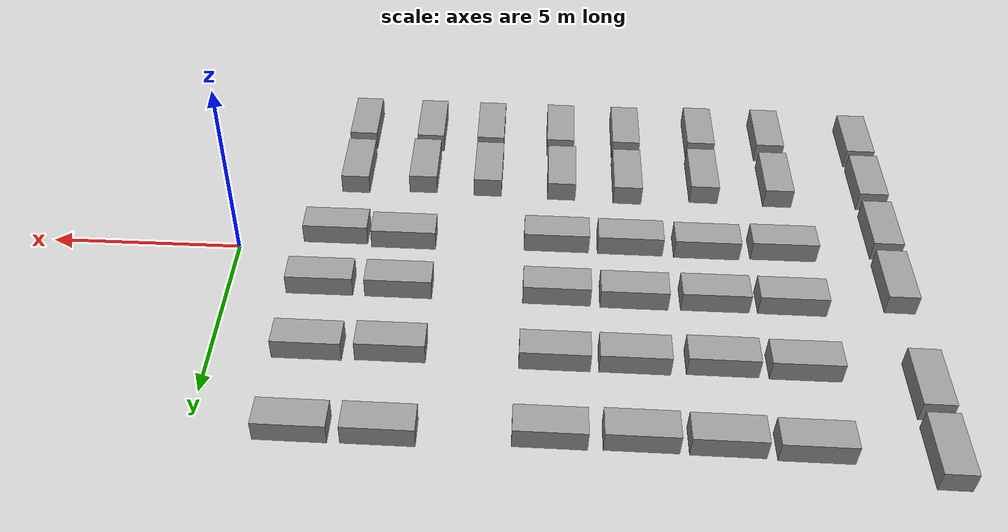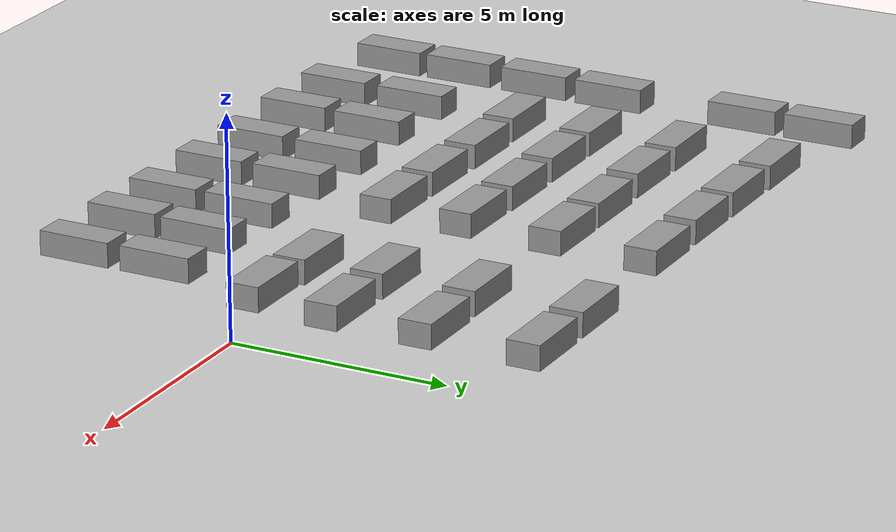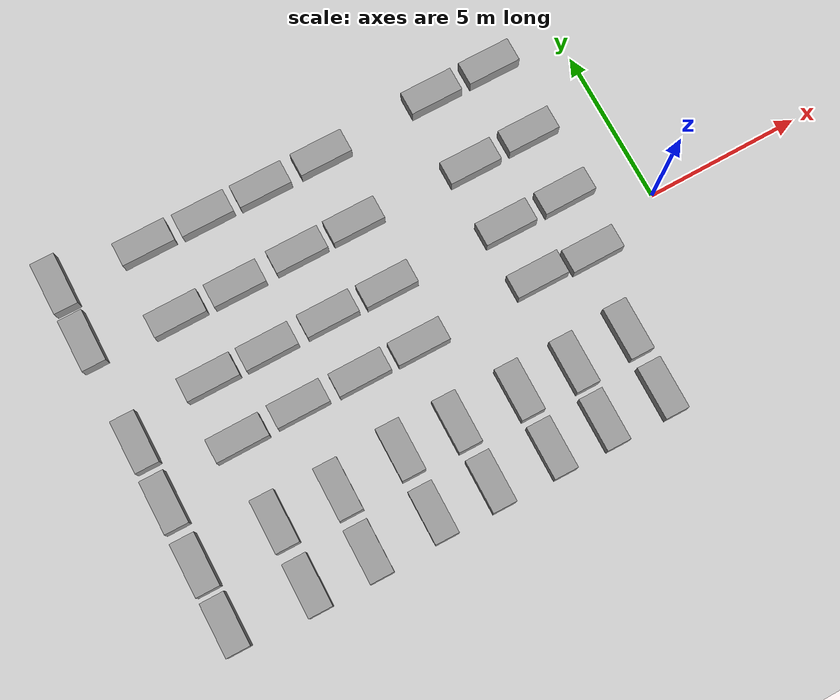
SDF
<sdf version="1.7">
 <world name="default">
  <model name="ground_plane">
   <static>1</static>
   <link name="link">
    <collision name="collision">
     <geometry><plane><normal>0 0 1</normal><size>100 100</size></plane></geometry>
     <surface><friction><ode><mu>100</mu><mu2>50</mu2></ode></friction></surface>
    </collision>
    <visual name="visual">
     <cast_shadows>0</cast_shadows>
     <geometry><plane><normal>0 0 1</normal><size>100 100</size></plane></geometry>
     <material>
      <script><uri>file://media/materials/scripts/gazebo.material</uri><name>Gazebo/Grey</name></script>
     </material>
    </visual>
   </link>
  </model>
  <model name="unit_box_clone_16">
   <pose>-2.8254 -3.28859 0.285053 0 0 -0.009404</pose>
   <link name="link">
    <inertial>
     <mass>1</mass>
     <inertia>
      <ixx>0.166667</ixx>
      <ixy>0</ixy>
      <ixz>0</ixz>
      <iyy>0.166667</iyy>
      <iyz>0</iyz>
      <izz>0.166667</izz>
     </inertia>
    </inertial>
    <collision name="collision"><geometry><box><size>0.769556 1.70794 0.570107</size></box></geometry></collision>
    <visual name="visual">
     <geometry><box><size>0.769556 1.70794 0.570107</size></box></geometry>
     <material>
      <script><name>Gazebo/Grey</name><uri>file://media/materials/scripts/gazebo.material</uri></script>
     </material>
    </visual>
   </link>
  </model>
  <model name="unit_box_clone_17">
   <pose>-2.82801 -5.28936 0.285053 0 0 -0.009404</pose>
   <link name="link">
    <inertial>
     <mass>1</mass>
     <inertia>
      <ixx>0.166667</ixx>
      <ixy>0</ixy>
      <ixz>0</ixz>
      <iyy>0.166667</iyy>
      <iyz>0</iyz>
      <izz>0.166667</izz>
     </inertia>
    </inertial>
    <collision name="collision"><geometry><box><size>0.769556 1.70794 0.570107</size></box></geometry></collision>
    <visual name="visual">
     <geometry><box><size>0.769556 1.70794 0.570107</size></box></geometry>
     <material>
      <script><name>Gazebo/Grey</name><uri>file://media/materials/scripts/gazebo.material</uri></script>
     </material>
    </visual>
   </link>
  </model>
  <model name="unit_box_clone_18">
   <pose>-4.70644 -3.38739 0.285053 0 0 -0.009404</pose>
   <link name="link">
    <inertial>
     <mass>1</mass>
     <inertia>
      <ixx>0.166667</ixx>
      <ixy>0</ixy>
      <ixz>0</ixz>
      <iyy>0.166667</iyy>
      <iyz>0</iyz>
      <izz>0.166667</izz>
     </inertia>
    </inertial>
    <collision name="collision"><geometry><box><size>0.769556 1.70794 0.570107</size></box></geometry></collision>
    <visual name="visual">
     <geometry><box><size>0.769556 1.70794 0.570107</size></box></geometry>
     <material>
      <script><name>Gazebo/Grey</name><uri>file://media/materials/scripts/gazebo.material</uri></script>
     </material>
    </visual>
   </link>
  </model>
  <model name="unit_box_clone_19">
   <pose>-4.77801 -5.27894 0.285053 0 0 -0.009404</pose>
   <link name="link">
    <inertial>
     <mass>1</mass>
     <inertia>
      <ixx>0.166667</ixx>
      <ixy>0</ixy>
      <ixz>0</ixz>
      <iyy>0.166667</iyy>
      <iyz>0</iyz>
      <izz>0.166667</izz>
     </inertia>
    </inertial>
    <collision name="collision"><geometry><box><size>0.769556 1.70794 0.570107</size></box></geometry></collision>
    <visual name="visual">
     <geometry><box><size>0.769556 1.70794 0.570107</size></box></geometry>
     <material>
      <script><name>Gazebo/Grey</name><uri>file://media/materials/scripts/gazebo.material</uri></script>
     </material>
    </visual>
   </link>
  </model>
  <model name="unit_box_clone_20">
   <pose>-6.5092 -3.33435 0.285053 0 0 -0.009404</pose>
   <link name="link">
    <inertial>
     <mass>1</mass>
     <inertia>
      <ixx>0.166667</ixx>
      <ixy>0</ixy>
      <ixz>0</ixz>
      <iyy>0.166667</iyy>
      <iyz>0</iyz>
      <izz>0.166667</izz>
     </inertia>
    </inertial>
    <collision name="collision"><geometry><box><size>0.769556 1.70794 0.570107</size></box></geometry></collision>
    <visual name="visual">
     <geometry><box><size>0.769556 1.70794 0.570107</size></box></geometry>
     <material>
      <script><name>Gazebo/Grey</name><uri>file://media/materials/scripts/gazebo.material</uri></script>
     </material>
    </visual>
   </link>
  </model>
  <model name="unit_box_clone_21">
   <pose>-6.51492 -5.26505 0.285053 0 0 -0.009404</pose>
   <link name="link">
    <inertial>
     <mass>1</mass>
     <inertia>
      <ixx>0.166667</ixx>
      <ixy>0</ixy>
      <ixz>0</ixz>
      <iyy>0.166667</iyy>
      <iyz>0</iyz>
      <izz>0.166667</izz>
     </inertia>
    </inertial>
    <collision name="collision"><geometry><box><size>0.769556 1.70794 0.570107</size></box></geometry></collision>
    <visual name="visual">
     <geometry><box><size>0.769556 1.70794 0.570107</size></box></geometry>
     <material>
      <script><name>Gazebo/Grey</name><uri>file://media/materials/scripts/gazebo.material</uri></script>
     </material>
    </visual>
   </link>
  </model>
  <model name="unit_box_clone_22">
   <pose>-8.55716 -3.28096 0.285053 0 0 -0.009404</pose>
   <link name="link">
    <inertial>
     <mass>1</mass>
     <inertia>
      <ixx>0.166667</ixx>
      <ixy>0</ixy>
      <ixz>0</ixz>
      <iyy>0.166667</iyy>
      <iyz>0</iyz>
      <izz>0.166667</izz>
     </inertia>
    </inertial>
    <collision name="collision"><geometry><box><size>0.769556 1.70794 0.570107</size></box></geometry></collision>
    <visual name="visual">
     <geometry><box><size>0.769556 1.70794 0.570107</size></box></geometry>
     <material>
      <script><name>Gazebo/Grey</name><uri>file://media/materials/scripts/gazebo.material</uri></script>
     </material>
    </visual>
   </link>
  </model>
  <model name="unit_box_clone_23">
   <pose>-8.53285 -5.2635 0.285053 0 0 -0.009404</pose>
   <link name="link">
    <inertial>
     <mass>1</mass>
     <inertia>
      <ixx>0.166667</ixx>
      <ixy>0</ixy>
      <ixz>0</ixz>
      <iyy>0.166667</iyy>
      <iyz>0</iyz>
      <izz>0.166667</izz>
     </inertia>
    </inertial>
    <collision name="collision"><geometry><box><size>0.769556 1.70794 0.570107</size></box></geometry></collision>
    <visual name="visual">
     <geometry><box><size>0.769556 1.70794 0.570107</size></box></geometry>
     <material>
      <script><name>Gazebo/Grey</name><uri>file://media/materials/scripts/gazebo.material</uri></script>
     </material>
    </visual>
   </link>
  </model>
  <model name="unit_box_clone_24">
   <pose>-10.3798 -3.21532 0.285053 0 0 -0.009404</pose>
   <link name="link">
    <inertial>
     <mass>1</mass>
     <inertia>
      <ixx>0.166667</ixx>
      <ixy>0</ixy>
      <ixz>0</ixz>
      <iyy>0.166667</iyy>
      <iyz>0</iyz>
      <izz>0.166667</izz>
     </inertia>
    </inertial>
    <collision name="collision"><geometry><box><size>0.769556 1.70794 0.570107</size></box></geometry></collision>
    <visual name="visual">
     <geometry><box><size>0.769556 1.70794 0.570107</size></box></geometry>
     <material>
      <script><name>Gazebo/Grey</name><uri>file://media/materials/scripts/gazebo.material</uri></script>
     </material>
    </visual>
   </link>
  </model>
  <model name="unit_box_clone_25">
   <pose>-10.4091 -5.25344 0.285053 0 0 -0.009404</pose>
   <link name="link">
    <inertial>
     <mass>1</mass>
     <inertia>
      <ixx>0.166667</ixx>
      <ixy>0</ixy>
      <ixz>0</ixz>
      <iyy>0.166667</iyy>
      <iyz>0</iyz>
      <izz>0.166667</izz>
     </inertia>
    </inertial>
    <collision name="collision"><geometry><box><size>0.769556 1.70794 0.570107</size></box></geometry></collision>
    <visual name="visual">
     <geometry><box><size>0.769556 1.70794 0.570107</size></box></geometry>
     <material>
      <script><name>Gazebo/Grey</name><uri>file://media/materials/scripts/gazebo.material</uri></script>
     </material>
    </visual>
   </link>
  </model>
  <model name="unit_box_clone_26">
   <pose>-12.4925 -3.36248 0.285053 0 0 -0.009404</pose>
   <link name="link">
    <inertial>
     <mass>1</mass>
     <inertia>
      <ixx>0.166667</ixx>
      <ixy>0</ixy>
      <ixz>0</ixz>
      <iyy>0.166667</iyy>
      <iyz>0</iyz>
      <izz>0.166667</izz>
     </inertia>
    </inertial>
    <collision name="collision"><geometry><box><size>0.769556 1.70794 0.570107</size></box></geometry></collision>
    <visual name="visual">
     <geometry><box><size>0.769556 1.70794 0.570107</size></box></geometry>
     <material>
      <script><name>Gazebo/Grey</name><uri>file://media/materials/scripts/gazebo.material</uri></script>
     </material>
    </visual>
   </link>
  </model>
  <model name="unit_box_clone_27">
   <pose>-12.554 -5.33887 0.285053 0 0 -0.009404</pose>
   <link name="link">
    <inertial>
     <mass>1</mass>
     <inertia>
      <ixx>0.166667</ixx>
      <ixy>0</ixy>
      <ixz>0</ixz>
      <iyy>0.166667</iyy>
      <iyz>0</iyz>
      <izz>0.166667</izz>
     </inertia>
    </inertial>
    <collision name="collision"><geometry><box><size>0.769556 1.70794 0.570107</size></box></geometry></collision>
    <visual name="visual">
     <geometry><box><size>0.769556 1.70794 0.570107</size></box></geometry>
     <material>
      <script><name>Gazebo/Grey</name><uri>file://media/materials/scripts/gazebo.material</uri></script>
     </material>
    </visual>
   </link>
  </model>
  <model name="unit_box_clone_28">
   <pose>-14.5124 -3.30787 0.285053 0 0 -0.009404</pose>
   <link name="link">
    <inertial>
     <mass>1</mass>
     <inertia>
      <ixx>0.166667</ixx>
      <ixy>0</ixy>
      <ixz>0</ixz>
      <iyy>0.166667</iyy>
      <iyz>0</iyz>
      <izz>0.166667</izz>
     </inertia>
    </inertial>
    <collision name="collision"><geometry><box><size>0.769556 1.70794 0.570107</size></box></geometry></collision>
    <visual name="visual">
     <geometry><box><size>0.769556 1.70794 0.570107</size></box></geometry>
     <material>
      <script><name>Gazebo/Grey</name><uri>file://media/materials/scripts/gazebo.material</uri></script>
     </material>
    </visual>
   </link>
  </model>
  <model name="unit_box_clone_29">
   <pose>-14.5214 -5.34607 0.285053 0 0 -0.009404</pose>
   <link name="link">
    <inertial>
     <mass>1</mass>
     <inertia>
      <ixx>0.166667</ixx>
      <ixy>0</ixy>
      <ixz>0</ixz>
      <iyy>0.166667</iyy>
      <iyz>0</iyz>
      <izz>0.166667</izz>
     </inertia>
    </inertial>
    <collision name="collision"><geometry><box><size>0.769556 1.70794 0.570107</size></box></geometry></collision>
    <visual name="visual">
     <geometry><box><size>0.769556 1.70794 0.570107</size></box></geometry>
     <material>
      <script><name>Gazebo/Grey</name><uri>file://media/materials/scripts/gazebo.material</uri></script>
     </material>
    </visual>
   </link>
  </model>
  <model name="unit_box_clone_30">
   <pose>-4.35346 -0.588108 0.285053 0 -0 1.56704</pose>
   <link name="link">
    <inertial>
     <mass>1</mass>
     <inertia>
      <ixx>0.166667</ixx>
      <ixy>0</ixy>
      <ixz>0</ixz>
      <iyy>0.166667</iyy>
      <iyz>0</iyz>
      <izz>0.166667</izz>
     </inertia>
    </inertial>
    <collision name="collision"><geometry><box><size>0.769556 1.70794 0.570107</size></box></geometry></collision>
    <visual name="visual">
     <geometry><box><size>0.769556 1.70794 0.570107</size></box></geometry>
     <material>
      <script><name>Gazebo/Grey</name><uri>file://media/materials/scripts/gazebo.material</uri></script>
     </material>
    </visual>
   </link>
  </model>
  <model name="unit_box_clone_30_clone">
   <pose>-2.53042 -0.690377 0.285055 -0 5e-06 1.57079</pose>
   <link name="link">
    <inertial>
     <mass>1</mass>
     <inertia>
      <ixx>0.166667</ixx>
      <ixy>0</ixy>
      <ixz>0</ixz>
      <iyy>0.166667</iyy>
      <iyz>0</iyz>
      <izz>0.166667</izz>
     </inertia>
    </inertial>
    <collision name="collision"><geometry><box><size>0.769556 1.70794 0.570107</size></box></geometry></collision>
    <visual name="visual">
     <geometry><box><size>0.769556 1.70794 0.570107</size></box></geometry>
     <material>
      <script><name>Gazebo/Grey</name><uri>file://media/materials/scripts/gazebo.material</uri></script>
     </material>
    </visual>
   </link>
  </model>
  <model name="unit_box_clone_30_clone_0">
   <pose>-4.38892 1.26145 0.285053 0 -0 1.56704</pose>
   <link name="link">
    <inertial>
     <mass>1</mass>
     <inertia>
      <ixx>0.166667</ixx>
      <ixy>0</ixy>
      <ixz>0</ixz>
      <iyy>0.166667</iyy>
      <iyz>0</iyz>
      <izz>0.166667</izz>
     </inertia>
    </inertial>
    <collision name="collision"><geometry><box><size>0.769556 1.70794 0.570107</size></box></geometry></collision>
    <visual name="visual">
     <geometry><box><size>0.769556 1.70794 0.570107</size></box></geometry>
     <material>
      <script><name>Gazebo/Grey</name><uri>file://media/materials/scripts/gazebo.material</uri></script>
     </material>
    </visual>
   </link>
  </model>
  <model name="unit_box_clone_30_clone_1">
   <pose>-2.37186 1.25944 0.285053 0 -0 1.57433</pose>
   <link name="link">
    <inertial>
     <mass>1</mass>
     <inertia>
      <ixx>0.166667</ixx>
      <ixy>0</ixy>
      <ixz>0</ixz>
      <iyy>0.166667</iyy>
      <iyz>0</iyz>
      <izz>0.166667</izz>
     </inertia>
    </inertial>
    <collision name="collision"><geometry><box><size>0.769556 1.70794 0.570107</size></box></geometry></collision>
    <visual name="visual">
     <geometry><box><size>0.769556 1.70794 0.570107</size></box></geometry>
     <material>
      <script><name>Gazebo/Grey</name><uri>file://media/materials/scripts/gazebo.material</uri></script>
     </material>
    </visual>
   </link>
  </model>
  <model name="unit_box_clone_30_clone_2">
   <pose>-4.39769 3.4318 0.285053 0 -0 1.56704</pose>
   <link name="link">
    <inertial>
     <mass>1</mass>
     <inertia>
      <ixx>0.166667</ixx>
      <ixy>0</ixy>
      <ixz>0</ixz>
      <iyy>0.166667</iyy>
      <iyz>0</iyz>
      <izz>0.166667</izz>
     </inertia>
    </inertial>
    <collision name="collision"><geometry><box><size>0.769556 1.70794 0.570107</size></box></geometry></collision>
    <visual name="visual">
     <geometry><box><size>0.769556 1.70794 0.570107</size></box></geometry>
     <material>
      <script><name>Gazebo/Grey</name><uri>file://media/materials/scripts/gazebo.material</uri></script>
     </material>
    </visual>
   </link>
  </model>
  <model name="unit_box_clone_30_clone_3">
   <pose>-2.37886 3.46659 0.285053 0 -0 1.56704</pose>
   <link name="link">
    <inertial>
     <mass>1</mass>
     <inertia>
      <ixx>0.166667</ixx>
      <ixy>0</ixy>
      <ixz>0</ixz>
      <iyy>0.166667</iyy>
      <iyz>0</iyz>
      <izz>0.166667</izz>
     </inertia>
    </inertial>
    <collision name="collision"><geometry><box><size>0.769556 1.70794 0.570107</size></box></geometry></collision>
    <visual name="visual">
     <geometry><box><size>0.769556 1.70794 0.570107</size></box></geometry>
     <material>
      <script><name>Gazebo/Grey</name><uri>file://media/materials/scripts/gazebo.material</uri></script>
     </material>
    </visual>
   </link>
  </model>
  <model name="unit_box_clone_30_clone_4">
   <pose>-4.37377 5.94155 0.285053 0 -0 1.56704</pose>
   <link name="link">
    <inertial>
     <mass>1</mass>
     <inertia>
      <ixx>0.166667</ixx>
      <ixy>0</ixy>
      <ixz>0</ixz>
      <iyy>0.166667</iyy>
      <iyz>0</iyz>
      <izz>0.166667</izz>
     </inertia>
    </inertial>
    <collision name="collision"><geometry><box><size>0.769556 1.70794 0.570107</size></box></geometry></collision>
    <visual name="visual">
     <geometry><box><size>0.769556 1.70794 0.570107</size></box></geometry>
     <material>
      <script><name>Gazebo/Grey</name><uri>file://media/materials/scripts/gazebo.material</uri></script>
     </material>
    </visual>
   </link>
  </model>
  <model name="unit_box_clone_30_clone_5">
   <pose>-2.37421 5.94728 0.285053 0 -0 1.56704</pose>
   <link name="link">
    <inertial>
     <mass>1</mass>
     <inertia>
      <ixx>0.166667</ixx>
      <ixy>0</ixy>
      <ixz>0</ixz>
      <iyy>0.166667</iyy>
      <iyz>0</iyz>
      <izz>0.166667</izz>
     </inertia>
    </inertial>
    <collision name="collision"><geometry><box><size>0.769556 1.70794 0.570107</size></box></geometry></collision>
    <visual name="visual">
     <geometry><box><size>0.769556 1.70794 0.570107</size></box></geometry>
     <material>
      <script><name>Gazebo/Grey</name><uri>file://media/materials/scripts/gazebo.material</uri></script>
     </material>
    </visual>
   </link>
  </model>
  <model name="unit_box_clone_30_clone_6">
   <pose>-8.22975 5.82066 0.285053 0 -0 1.56704</pose>
   <link name="link">
    <inertial>
     <mass>1</mass>
     <inertia>
      <ixx>0.166667</ixx>
      <ixy>0</ixy>
      <ixz>0</ixz>
      <iyy>0.166667</iyy>
      <iyz>0</iyz>
      <izz>0.166667</izz>
     </inertia>
    </inertial>
    <collision name="collision"><geometry><box><size>0.769556 1.70794 0.570107</size></box></geometry></collision>
    <visual name="visual">
     <geometry><box><size>0.769556 1.70794 0.570107</size></box></geometry>
     <material>
      <script><name>Gazebo/Grey</name><uri>file://media/materials/scripts/gazebo.material</uri></script>
     </material>
    </visual>
   </link>
  </model>
  <model name="unit_box_clone_30_clone_7">
   <pose>-10.2842 5.80679 0.285053 0 -0 1.56704</pose>
   <link name="link">
    <inertial>
     <mass>1</mass>
     <inertia>
      <ixx>0.166667</ixx>
      <ixy>0</ixy>
      <ixz>0</ixz>
      <iyy>0.166667</iyy>
      <iyz>0</iyz>
      <izz>0.166667</izz>
     </inertia>
    </inertial>
    <collision name="collision"><geometry><box><size>0.769556 1.70794 0.570107</size></box></geometry></collision>
    <visual name="visual">
     <geometry><box><size>0.769556 1.70794 0.570107</size></box></geometry>
     <material>
      <script><name>Gazebo/Grey</name><uri>file://media/materials/scripts/gazebo.material</uri></script>
     </material>
    </visual>
   </link>
  </model>
  <model name="unit_box_clone_30_clone_8">
   <pose>-14.1499 5.87711 0.285053 0 -0 1.56704</pose>
   <link name="link">
    <inertial>
     <mass>1</mass>
     <inertia>
      <ixx>0.166667</ixx>
      <ixy>0</ixy>
      <ixz>0</ixz>
      <iyy>0.166667</iyy>
      <iyz>0</iyz>
      <izz>0.166667</izz>
     </inertia>
    </inertial>
    <collision name="collision"><geometry><box><size>0.769556 1.70794 0.570107</size></box></geometry></collision>
    <visual name="visual">
     <geometry><box><size>0.769556 1.70794 0.570107</size></box></geometry>
     <material>
      <script><name>Gazebo/Grey</name><uri>file://media/materials/scripts/gazebo.material</uri></script>
     </material>
    </visual>
   </link>
  </model>
  <model name="unit_box_clone_30_clone_9">
   <pose>-12.2068 5.82987 0.285053 0 -0 1.56704</pose>
   <link name="link">
    <inertial>
     <mass>1</mass>
     <inertia>
      <ixx>0.166667</ixx>
      <ixy>0</ixy>
      <ixz>0</ixz>
      <iyy>0.166667</iyy>
      <iyz>0</iyz>
      <izz>0.166667</izz>
     </inertia>
    </inertial>
    <collision name="collision"><geometry><box><size>0.769556 1.70794 0.570107</size></box></geometry></collision>
    <visual name="visual">
     <geometry><box><size>0.769556 1.70794 0.570107</size></box></geometry>
     <material>
      <script><name>Gazebo/Grey</name><uri>file://media/materials/scripts/gazebo.material</uri></script>
     </material>
    </visual>
   </link>
  </model>
  <model name="unit_box_clone_30_clone_10">
   <pose>-12.338 3.45716 0.285053 0 -0 1.56453</pose>
   <link name="link">
    <inertial>
     <mass>1</mass>
     <inertia>
      <ixx>0.166667</ixx>
      <ixy>0</ixy>
      <ixz>0</ixz>
      <iyy>0.166667</iyy>
      <iyz>0</iyz>
      <izz>0.166667</izz>
     </inertia>
    </inertial>
    <collision name="collision"><geometry><box><size>0.769556 1.70794 0.570107</size></box></geometry></collision>
    <visual name="visual">
     <geometry><box><size>0.769556 1.70794 0.570107</size></box></geometry>
     <material>
      <script><name>Gazebo/Grey</name><uri>file://media/materials/scripts/gazebo.material</uri></script>
     </material>
    </visual>
   </link>
  </model>
  <model name="unit_box_clone_30_clone_11">
   <pose>-14.2854 3.48316 0.285053 0 -0 1.57079</pose>
   <link name="link">
    <inertial>
     <mass>1</mass>
     <inertia>
      <ixx>0.166667</ixx>
      <ixy>0</ixy>
      <ixz>0</ixz>
      <iyy>0.166667</iyy>
      <iyz>0</iyz>
      <izz>0.166667</izz>
     </inertia>
    </inertial>
    <collision name="collision"><geometry><box><size>0.769556 1.70794 0.570107</size></box></geometry></collision>
    <visual name="visual">
     <geometry><box><size>0.769556 1.70794 0.570107</size></box></geometry>
     <material>
      <script><name>Gazebo/Grey</name><uri>file://media/materials/scripts/gazebo.material</uri></script>
     </material>
    </visual>
   </link>
  </model>
  <model name="unit_box_clone_30_clone_12">
   <pose>-8.34685 3.49428 0.285053 0 -0 1.56704</pose>
   <link name="link">
    <inertial>
     <mass>1</mass>
     <inertia>
      <ixx>0.166667</ixx>
      <ixy>0</ixy>
      <ixz>0</ixz>
      <iyy>0.166667</iyy>
      <iyz>0</iyz>
      <izz>0.166667</izz>
     </inertia>
    </inertial>
    <collision name="collision"><geometry><box><size>0.769556 1.70794 0.570107</size></box></geometry></collision>
    <visual name="visual">
     <geometry><box><size>0.769556 1.70794 0.570107</size></box></geometry>
     <material>
      <script><name>Gazebo/Grey</name><uri>file://media/materials/scripts/gazebo.material</uri></script>
     </material>
    </visual>
   </link>
  </model>
  <model name="unit_box_clone_30_clone_13">
   <pose>-10.2581 3.49089 0.285053 0 -0 1.56704</pose>
   <link name="link">
    <inertial>
     <mass>1</mass>
     <inertia>
      <ixx>0.166667</ixx>
      <ixy>0</ixy>
      <ixz>0</ixz>
      <iyy>0.166667</iyy>
      <iyz>0</iyz>
      <izz>0.166667</izz>
     </inertia>
    </inertial>
    <collision name="collision"><geometry><box><size>0.769556 1.70794 0.570107</size></box></geometry></collision>
    <visual name="visual">
     <geometry><box><size>0.769556 1.70794 0.570107</size></box></geometry>
     <material>
      <script><name>Gazebo/Grey</name><uri>file://media/materials/scripts/gazebo.material</uri></script>
     </material>
    </visual>
   </link>
  </model>
  <model name="unit_box_clone_30_clone_14">
   <pose>-8.40295 1.29549 0.285053 0 -0 1.56704</pose>
   <link name="link">
    <inertial>
     <mass>1</mass>
     <inertia>
      <ixx>0.166667</ixx>
      <ixy>0</ixy>
      <ixz>0</ixz>
      <iyy>0.166667</iyy>
      <iyz>0</iyz>
      <izz>0.166667</izz>
     </inertia>
    </inertial>
    <collision name="collision"><geometry><box><size>0.769556 1.70794 0.570107</size></box></geometry></collision>
    <visual name="visual">
     <geometry><box><size>0.769556 1.70794 0.570107</size></box></geometry>
     <material>
      <script><name>Gazebo/Grey</name><uri>file://media/materials/scripts/gazebo.material</uri></script>
     </material>
    </visual>
   </link>
  </model>
  <model name="unit_box_clone_30_clone_15">
   <pose>-10.3504 1.33232 0.285053 0 -0 1.56704</pose>
   <link name="link">
    <inertial>
     <mass>1</mass>
     <inertia>
      <ixx>0.166667</ixx>
      <ixy>0</ixy>
      <ixz>0</ixz>
      <iyy>0.166667</iyy>
      <iyz>0</iyz>
      <izz>0.166667</izz>
     </inertia>
    </inertial>
    <collision name="collision"><geometry><box><size>0.769556 1.70794 0.570107</size></box></geometry></collision>
    <visual name="visual">
     <geometry><box><size>0.769556 1.70794 0.570107</size></box></geometry>
     <material>
      <script><name>Gazebo/Grey</name><uri>file://media/materials/scripts/gazebo.material</uri></script>
     </material>
    </visual>
   </link>
  </model>
  <model name="unit_box_clone_30_clone_16">
   <pose>-12.3727 1.31728 0.285053 0 -0 1.57078</pose>
   <link name="link">
    <inertial>
     <mass>1</mass>
     <inertia>
      <ixx>0.166667</ixx>
      <ixy>0</ixy>
      <ixz>0</ixz>
      <iyy>0.166667</iyy>
      <iyz>0</iyz>
      <izz>0.166667</izz>
     </inertia>
    </inertial>
    <collision name="collision"><geometry><box><size>0.769556 1.70794 0.570107</size></box></geometry></collision>
    <visual name="visual">
     <geometry><box><size>0.769556 1.70794 0.570107</size></box></geometry>
     <material>
      <script><name>Gazebo/Grey</name><uri>file://media/materials/scripts/gazebo.material</uri></script>
     </material>
    </visual>
   </link>
  </model>
  <model name="unit_box_clone_30_clone_17">
   <pose>-14.2938 1.32589 0.285053 0 -0 1.56704</pose>
   <link name="link">
    <inertial>
     <mass>1</mass>
     <inertia>
      <ixx>0.166667</ixx>
      <ixy>0</ixy>
      <ixz>0</ixz>
      <iyy>0.166667</iyy>
      <iyz>0</iyz>
      <izz>0.166667</izz>
     </inertia>
    </inertial>
    <collision name="collision"><geometry><box><size>0.769556 1.70794 0.570107</size></box></geometry></collision>
    <visual name="visual">
     <geometry><box><size>0.769556 1.70794 0.570107</size></box></geometry>
     <material>
      <script><name>Gazebo/Grey</name><uri>file://media/materials/scripts/gazebo.material</uri></script>
     </material>
    </visual>
   </link>
  </model>
  <model name="unit_box_clone_30_clone_18">
   <pose>-8.40461 -0.678805 0.285053 0 -0 1.56704</pose>
   <link name="link">
    <inertial>
     <mass>1</mass>
     <inertia>
      <ixx>0.166667</ixx>
      <ixy>0</ixy>
      <ixz>0</ixz>
      <iyy>0.166667</iyy>
      <iyz>0</iyz>
      <izz>0.166667</izz>
     </inertia>
    </inertial>
    <collision name="collision"><geometry><box><size>0.769556 1.70794 0.570107</size></box></geometry></collision>
    <visual name="visual">
     <geometry><box><size>0.769556 1.70794 0.570107</size></box></geometry>
     <material>
      <script><name>Gazebo/Grey</name><uri>file://media/materials/scripts/gazebo.material</uri></script>
     </material>
    </visual>
   </link>
  </model>
  <model name="unit_box_clone_30_clone_19">
   <pose>-10.3472 -0.662162 0.285053 0 -0 1.56704</pose>
   <link name="link">
    <inertial>
     <mass>1</mass>
     <inertia>
      <ixx>0.166667</ixx>
      <ixy>0</ixy>
      <ixz>0</ixz>
      <iyy>0.166667</iyy>
      <iyz>0</iyz>
      <izz>0.166667</izz>
     </inertia>
    </inertial>
    <collision name="collision"><geometry><box><size>0.769556 1.70794 0.570107</size></box></geometry></collision>
    <visual name="visual">
     <geometry><box><size>0.769556 1.70794 0.570107</size></box></geometry>
     <material>
      <script><name>Gazebo/Grey</name><uri>file://media/materials/scripts/gazebo.material</uri></script>
     </material>
    </visual>
   </link>
  </model>
  <model name="unit_box_clone_30_clone_20">
   <pose>-12.3506 -0.624524 0.285053 0 -0 1.56704</pose>
   <link name="link">
    <inertial>
     <mass>1</mass>
     <inertia>
      <ixx>0.166667</ixx>
      <ixy>0</ixy>
      <ixz>0</ixz>
      <iyy>0.166667</iyy>
      <iyz>0</iyz>
      <izz>0.166667</izz>
     </inertia>
    </inertial>
    <collision name="collision"><geometry><box><size>0.769556 1.70794 0.570107</size></box></geometry></collision>
    <visual name="visual">
     <geometry><box><size>0.769556 1.70794 0.570107</size></box></geometry>
     <material>
      <script><name>Gazebo/Grey</name><uri>file://media/materials/scripts/gazebo.material</uri></script>
     </material>
    </visual>
   </link>
  </model>
  <model name="unit_box_clone_30_clone_21">
   <pose>-14.354 -0.664939 0.285053 0 -0 1.57078</pose>
   <link name="link">
    <inertial>
     <mass>1</mass>
     <inertia>
      <ixx>0.166667</ixx>
      <ixy>0</ixy>
      <ixz>0</ixz>
      <iyy>0.166667</iyy>
      <iyz>0</iyz>
      <izz>0.166667</izz>
     </inertia>
    </inertial>
    <collision name="collision"><geometry><box><size>0.769556 1.70794 0.570107</size></box></geometry></collision>
    <visual name="visual">
     <geometry><box><size>0.769556 1.70794 0.570107</size></box></geometry>
     <material>
      <script><name>Gazebo/Grey</name><uri>file://media/materials/scripts/gazebo.material</uri></script>
     </material>
    </visual>
   </link>
  </model>
  <model name="unit_box_clone_28_clone">
   <pose>-17.0533 -5.20512 0.285053 0 0 -0.009404</pose>
   <link name="link">
    <inertial>
     <mass>1</mass>
     <inertia>
      <ixx>0.166667</ixx>
      <ixy>0</ixy>
      <ixz>0</ixz>
      <iyy>0.166667</iyy>
      <iyz>0</iyz>
      <izz>0.166667</izz>
     </inertia>
    </inertial>
    <collision name="collision"><geometry><box><size>0.769556 1.70794 0.570107</size></box></geometry></collision>
    <visual name="visual">
     <geometry><box><size>0.769556 1.70794 0.570107</size></box></geometry>
     <material>
      <script><name>Gazebo/Grey</name><uri>file://media/materials/scripts/gazebo.material</uri></script>
     </material>
    </visual>
   </link>
  </model>
  <model name="unit_box_clone_28_clone_0">
   <pose>-17.0521 -3.31667 0.285053 0 0 -0.009404</pose>
   <link name="link">
    <inertial>
     <mass>1</mass>
     <inertia>
      <ixx>0.166667</ixx>
      <ixy>0</ixy>
      <ixz>0</ixz>
      <iyy>0.166667</iyy>
      <iyz>0</iyz>
      <izz>0.166667</izz>
     </inertia>
    </inertial>
    <collision name="collision"><geometry><box><size>0.769556 1.70794 0.570107</size></box></geometry></collision>
    <visual name="visual">
     <geometry><box><size>0.769556 1.70794 0.570107</size></box></geometry>
     <material>
      <script><name>Gazebo/Grey</name><uri>file://media/materials/scripts/gazebo.material</uri></script>
     </material>
    </visual>
   </link>
  </model>
  <model name="unit_box_clone_28_clone_1">
   <pose>-17.0375 -1.31309 0.285053 0 0 -0.009404</pose>
   <link name="link">
    <inertial>
     <mass>1</mass>
     <inertia>
      <ixx>0.166667</ixx>
      <ixy>0</ixy>
      <ixz>0</ixz>
      <iyy>0.166667</iyy>
      <iyz>0</iyz>
      <izz>0.166667</izz>
     </inertia>
    </inertial>
    <collision name="collision"><geometry><box><size>0.769556 1.70794 0.570107</size></box></geometry></collision>
    <visual name="visual">
     <geometry><box><size>0.769556 1.70794 0.570107</size></box></geometry>
     <material>
      <script><name>Gazebo/Grey</name><uri>file://media/materials/scripts/gazebo.material</uri></script>
     </material>
    </visual>
   </link>
  </model>
  <model name="unit_box_clone_28_clone_2">
   <pose>-17.0073 0.647731 0.285053 0 0 -0.009404</pose>
   <link name="link">
    <inertial>
     <mass>1</mass>
     <inertia>
      <ixx>0.166667</ixx>
      <ixy>0</ixy>
      <ixz>0</ixz>
      <iyy>0.166667</iyy>
      <iyz>0</iyz>
      <izz>0.166667</izz>
     </inertia>
    </inertial>
    <collision name="collision"><geometry><box><size>0.769556 1.70794 0.570107</size></box></geometry></collision>
    <visual name="visual">
     <geometry><box><size>0.769556 1.70794 0.570107</size></box></geometry>
     <material>
      <script><name>Gazebo/Grey</name><uri>file://media/materials/scripts/gazebo.material</uri></script>
     </material>
    </visual>
   </link>
  </model>
  <model name="unit_box_clone_28_clone_3">
   <pose>-17.0501 4.06241 0.285053 0 0 -0.009404</pose>
   <link name="link">
    <inertial>
     <mass>1</mass>
     <inertia>
      <ixx>0.166667</ixx>
      <ixy>0</ixy>
      <ixz>0</ixz>
      <iyy>0.166667</iyy>
      <iyz>0</iyz>
      <izz>0.166667</izz>
     </inertia>
    </inertial>
    <collision name="collision"><geometry><box><size>0.769556 1.70794 0.570107</size></box></geometry></collision>
    <visual name="visual">
     <geometry><box><size>0.769556 1.70794 0.570107</size></box></geometry>
     <material>
      <script><name>Gazebo/Grey</name><uri>file://media/materials/scripts/gazebo.material</uri></script>
     </material>
    </visual>
   </link>
  </model>
  <model name="unit_box_clone_28_clone_4">
   <pose>-17.0311 5.99353 0.285053 0 0 -0.009404</pose>
   <link name="link">
    <inertial>
     <mass>1</mass>
     <inertia>
      <ixx>0.166667</ixx>
      <ixy>0</ixy>
      <ixz>0</ixz>
      <iyy>0.166667</iyy>
      <iyz>0</iyz>
      <izz>0.166667</izz>
     </inertia>
    </inertial>
    <collision name="collision"><geometry><box><size>0.769556 1.70794 0.570107</size></box></geometry></collision>
    <visual name="visual">
     <geometry><box><size>0.769556 1.70794 0.570107</size></box></geometry>
     <material>
      <script><name>Gazebo/Grey</name><uri>file://media/materials/scripts/gazebo.material</uri></script>
     </material>
    </visual>
   </link>
  </model>
 </world>
</sdf>
